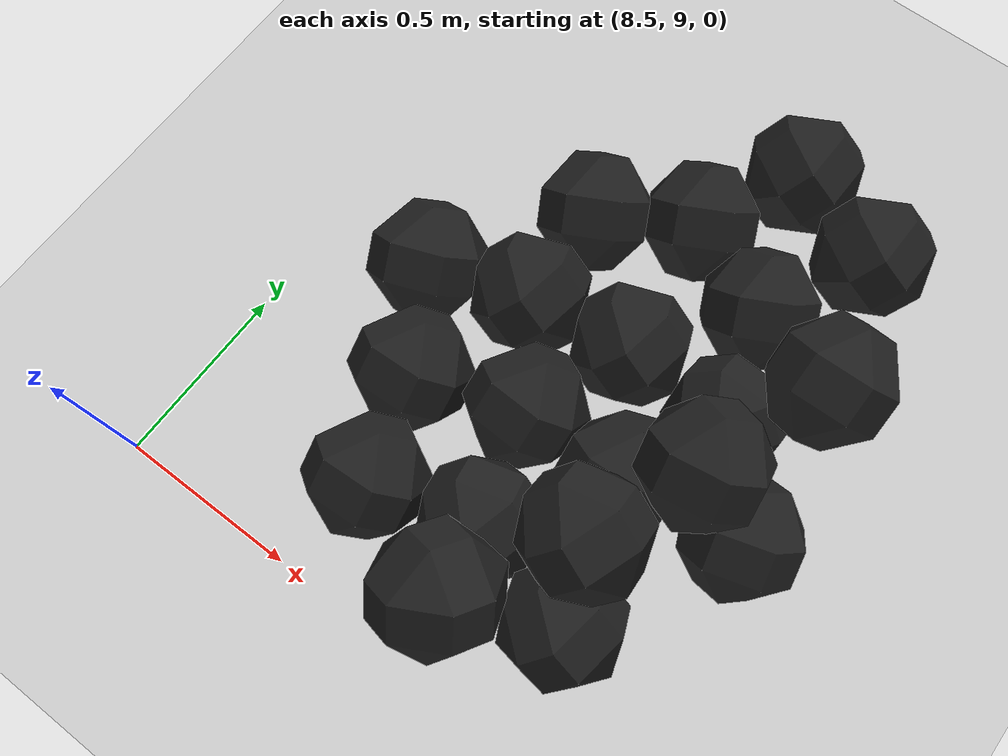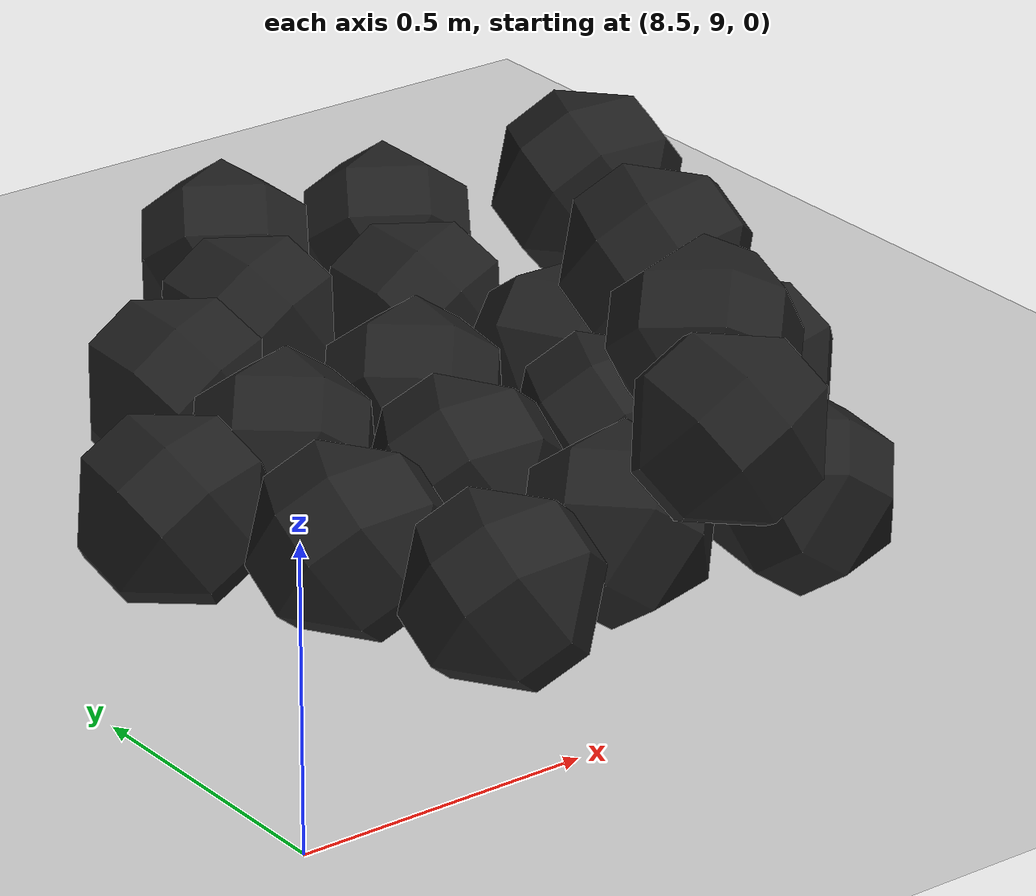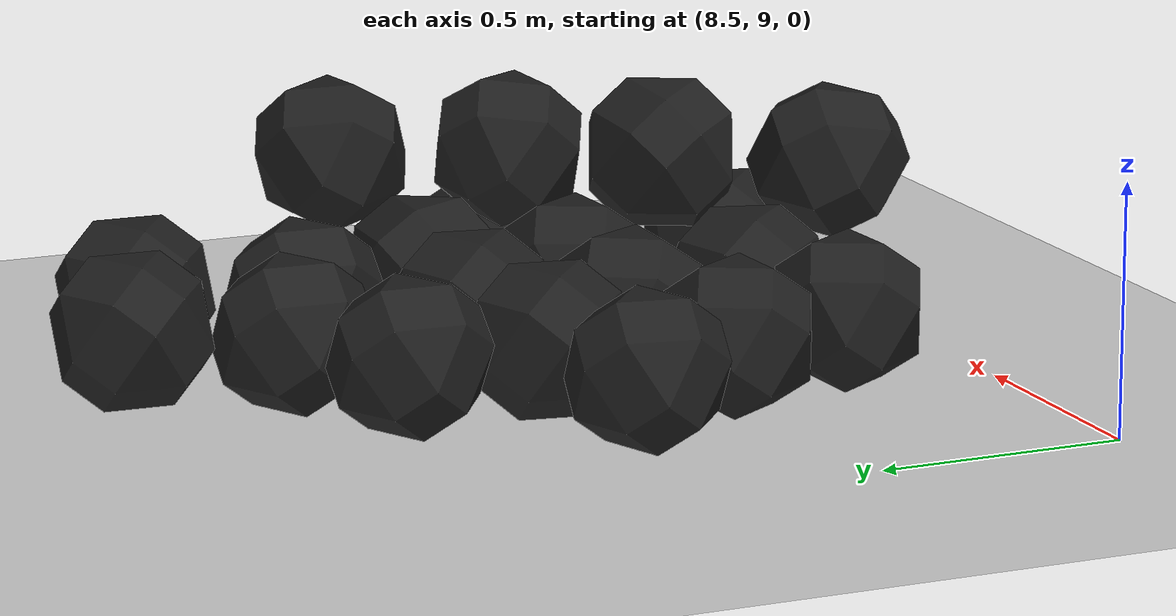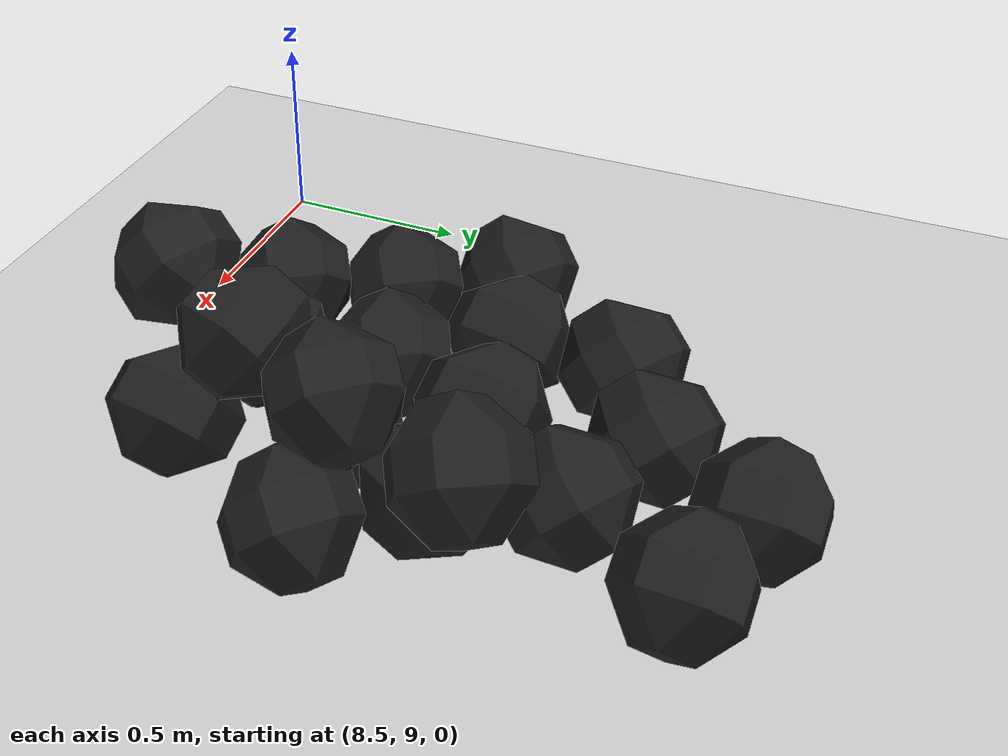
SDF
<sdf version="1.7">
 <world name="default">
  <model name="ground_plane">
   <static>1</static>
   <link name="link">
    <collision name="collision">
     <geometry><plane><normal>0 0 1</normal><size>100 100</size></plane></geometry>
     <surface><friction><ode><mu>100</mu><mu2>50</mu2></ode></friction></surface>
    </collision>
    <visual name="visual">
     <cast_shadows>0</cast_shadows>
     <geometry><plane><normal>0 0 1</normal><size>100 100</size></plane></geometry>
     <material>
      <script><uri>file://media/materials/scripts/gazebo.material</uri><name>Gazebo/Grey</name></script>
     </material>
    </visual>
   </link>
  </model>
  <model name="haoduomiantiaa_11">
   <link name="link_0">
    <inertial>
     <mass>0.2</mass>
     <inertia>
      <ixx>0.166667</ixx>
      <ixy>0</ixy>
      <ixz>0</ixz>
      <iyy>0.166667</iyy>
      <iyz>0</iyz>
      <izz>0.166667</izz>
     </inertia>
    </inertial>
    <visual name="visual">
     <geometry>
      <mesh>
       <uri>/home/lihaoyang/catkin_ws/src/pudong_gazebo/world/stl/haoduomianti.stl</uri>
       <scale>1 1 1</scale>
      </mesh>
     </geometry>
     <material>
      <lighting>1</lighting>
      <script><uri>file://media/materials/scripts/gazebo.material</uri><name>Gazebo/Black</name></script>
      <shader type="pixel"><normal_map>__default__</normal_map></shader>
      <ambient>0.3 0.3 0.3 1</ambient>
      <diffuse>0.7 0.7 0.7 1</diffuse>
      <specular>0.01 0.01 0.01 1</specular>
      <emissive>0 0 0 1</emissive>
     </material>
    </visual>
    <collision name="collision">
     <geometry>
      <mesh>
       <uri>/home/lihaoyang/catkin_ws/src/pudong_gazebo/world/stl/haoduomianti.stl</uri>
       <scale>1 1 1</scale>
      </mesh>
     </geometry>
     <surface>
      <friction>
       <ode><mu>1</mu><mu2>1</mu2><fdir1>0 0 0</fdir1><slip1>0</slip1><slip2>0</slip2></ode>
       <torsional>
        <coefficient>1</coefficient>
        <patch_radius>0</patch_radius>
        <surface_radius>0</surface_radius>
        <use_patch_radius>1</use_patch_radius>
        <ode><slip>0</slip></ode>
       </torsional>
      </friction>
      <bounce><restitution_coefficient>0</restitution_coefficient><threshold>1e+06</threshold></bounce>
      <contact>
       <collide_without_contact>0</collide_without_contact>
       <collide_without_contact_bitmask>1</collide_without_contact_bitmask>
       <collide_bitmask>1</collide_bitmask>
       <ode>
        <soft_cfm>0</soft_cfm>
        <soft_erp>0.2</soft_erp>
        <kp>1e+13</kp>
        <kd>1</kd>
        <max_vel>0.01</max_vel>
        <min_depth>0</min_depth>
       </ode>
       <bullet>
        <split_impulse>1</split_impulse>
        <split_impulse_penetration_threshold>-0.01</split_impulse_penetration_threshold>
        <soft_cfm>0</soft_cfm>
        <soft_erp>0.2</soft_erp>
        <kp>1e+13</kp>
        <kd>1</kd>
       </bullet>
      </contact>
     </surface>
    </collision>
   </link>
   <static>0</static>
   <pose>9.6664 9.28715 -0.115549 0.785326 -0.615512 -1.21019</pose>
  </model>
  <model name="haoduomiantiaa_23">
   <link name="link_0">
    <inertial>
     <mass>0.2</mass>
     <inertia>
      <ixx>0.166667</ixx>
      <ixy>0</ixy>
      <ixz>0</ixz>
      <iyy>0.166667</iyy>
      <iyz>0</iyz>
      <izz>0.166667</izz>
     </inertia>
    </inertial>
    <visual name="visual">
     <geometry>
      <mesh>
       <uri>/home/lihaoyang/catkin_ws/src/pudong_gazebo/world/stl/haoduomianti.stl</uri>
       <scale>1 1 1</scale>
      </mesh>
     </geometry>
     <material>
      <lighting>1</lighting>
      <script><uri>file://media/materials/scripts/gazebo.material</uri><name>Gazebo/Black</name></script>
      <shader type="pixel"><normal_map>__default__</normal_map></shader>
      <ambient>0.3 0.3 0.3 1</ambient>
      <diffuse>0.7 0.7 0.7 1</diffuse>
      <specular>0.01 0.01 0.01 1</specular>
      <emissive>0 0 0 1</emissive>
     </material>
    </visual>
    <collision name="collision">
     <geometry>
      <mesh>
       <uri>/home/lihaoyang/catkin_ws/src/pudong_gazebo/world/stl/haoduomianti.stl</uri>
       <scale>1 1 1</scale>
      </mesh>
     </geometry>
     <surface>
      <friction>
       <ode><mu>1</mu><mu2>1</mu2><fdir1>0 0 0</fdir1><slip1>0</slip1><slip2>0</slip2></ode>
       <torsional>
        <coefficient>1</coefficient>
        <patch_radius>0</patch_radius>
        <surface_radius>0</surface_radius>
        <use_patch_radius>1</use_patch_radius>
        <ode><slip>0</slip></ode>
       </torsional>
      </friction>
      <bounce><restitution_coefficient>0</restitution_coefficient><threshold>1e+06</threshold></bounce>
      <contact>
       <collide_without_contact>0</collide_without_contact>
       <collide_without_contact_bitmask>1</collide_without_contact_bitmask>
       <collide_bitmask>1</collide_bitmask>
       <ode>
        <soft_cfm>0</soft_cfm>
        <soft_erp>0.2</soft_erp>
        <kp>1e+13</kp>
        <kd>1</kd>
        <max_vel>0.01</max_vel>
        <min_depth>0</min_depth>
       </ode>
       <bullet>
        <split_impulse>1</split_impulse>
        <split_impulse_penetration_threshold>-0.01</split_impulse_penetration_threshold>
        <soft_cfm>0</soft_cfm>
        <soft_erp>0.2</soft_erp>
        <kp>1e+13</kp>
        <kd>1</kd>
       </bullet>
      </contact>
     </surface>
    </collision>
   </link>
   <static>0</static>
   <pose>9.75276 10.5268 -0.115443 0.7854 -0.61557 -1.08412</pose>
  </model>
  <model name="haoduomiantiaa_29">
   <link name="link_0">
    <inertial>
     <mass>0.2</mass>
     <inertia>
      <ixx>0.166667</ixx>
      <ixy>0</ixy>
      <ixz>0</ixz>
      <iyy>0.166667</iyy>
      <iyz>0</iyz>
      <izz>0.166667</izz>
     </inertia>
    </inertial>
    <visual name="visual">
     <geometry>
      <mesh>
       <uri>/home/lihaoyang/catkin_ws/src/pudong_gazebo/world/stl/haoduomianti.stl</uri>
       <scale>1 1 1</scale>
      </mesh>
     </geometry>
     <material>
      <lighting>1</lighting>
      <script><uri>file://media/materials/scripts/gazebo.material</uri><name>Gazebo/Black</name></script>
      <shader type="pixel"><normal_map>__default__</normal_map></shader>
      <ambient>0.3 0.3 0.3 1</ambient>
      <diffuse>0.7 0.7 0.7 1</diffuse>
      <specular>0.01 0.01 0.01 1</specular>
      <emissive>0 0 0 1</emissive>
     </material>
    </visual>
    <collision name="collision">
     <geometry>
      <mesh>
       <uri>/home/lihaoyang/catkin_ws/src/pudong_gazebo/world/stl/haoduomianti.stl</uri>
       <scale>1 1 1</scale>
      </mesh>
     </geometry>
     <surface>
      <friction>
       <ode><mu>1</mu><mu2>1</mu2><fdir1>0 0 0</fdir1><slip1>0</slip1><slip2>0</slip2></ode>
       <torsional>
        <coefficient>1</coefficient>
        <patch_radius>0</patch_radius>
        <surface_radius>0</surface_radius>
        <use_patch_radius>1</use_patch_radius>
        <ode><slip>0</slip></ode>
       </torsional>
      </friction>
      <bounce><restitution_coefficient>0</restitution_coefficient><threshold>1e+06</threshold></bounce>
      <contact>
       <collide_without_contact>0</collide_without_contact>
       <collide_without_contact_bitmask>1</collide_without_contact_bitmask>
       <collide_bitmask>1</collide_bitmask>
       <ode>
        <soft_cfm>0</soft_cfm>
        <soft_erp>0.2</soft_erp>
        <kp>1e+13</kp>
        <kd>1</kd>
        <max_vel>0.01</max_vel>
        <min_depth>0</min_depth>
       </ode>
       <bullet>
        <split_impulse>1</split_impulse>
        <split_impulse_penetration_threshold>-0.01</split_impulse_penetration_threshold>
        <soft_cfm>0</soft_cfm>
        <soft_erp>0.2</soft_erp>
        <kp>1e+13</kp>
        <kd>1</kd>
       </bullet>
      </contact>
     </surface>
    </collision>
   </link>
   <static>0</static>
   <pose>9.33699 10.3471 -0.115447 0.785353 -0.615352 2.05198</pose>
  </model>
  <model name="haoduomiantiaa_31">
   <link name="link_0">
    <inertial>
     <mass>0.2</mass>
     <inertia>
      <ixx>0.166667</ixx>
      <ixy>0</ixy>
      <ixz>0</ixz>
      <iyy>0.166667</iyy>
      <iyz>0</iyz>
      <izz>0.166667</izz>
     </inertia>
    </inertial>
    <visual name="visual">
     <geometry>
      <mesh>
       <uri>/home/lihaoyang/catkin_ws/src/pudong_gazebo/world/stl/haoduomianti.stl</uri>
       <scale>1 1 1</scale>
      </mesh>
     </geometry>
     <material>
      <lighting>1</lighting>
      <script><uri>file://media/materials/scripts/gazebo.material</uri><name>Gazebo/Black</name></script>
      <shader type="pixel"><normal_map>__default__</normal_map></shader>
      <ambient>0.3 0.3 0.3 1</ambient>
      <diffuse>0.7 0.7 0.7 1</diffuse>
      <specular>0.01 0.01 0.01 1</specular>
      <emissive>0 0 0 1</emissive>
     </material>
    </visual>
    <collision name="collision">
     <geometry>
      <mesh>
       <uri>/home/lihaoyang/catkin_ws/src/pudong_gazebo/world/stl/haoduomianti.stl</uri>
       <scale>1 1 1</scale>
      </mesh>
     </geometry>
     <surface>
      <friction>
       <ode><mu>1</mu><mu2>1</mu2><fdir1>0 0 0</fdir1><slip1>0</slip1><slip2>0</slip2></ode>
       <torsional>
        <coefficient>1</coefficient>
        <patch_radius>0</patch_radius>
        <surface_radius>0</surface_radius>
        <use_patch_radius>1</use_patch_radius>
        <ode><slip>0</slip></ode>
       </torsional>
      </friction>
      <bounce><restitution_coefficient>0</restitution_coefficient><threshold>1e+06</threshold></bounce>
      <contact>
       <collide_without_contact>0</collide_without_contact>
       <collide_without_contact_bitmask>1</collide_without_contact_bitmask>
       <collide_bitmask>1</collide_bitmask>
       <ode>
        <soft_cfm>0</soft_cfm>
        <soft_erp>0.2</soft_erp>
        <kp>1e+13</kp>
        <kd>1</kd>
        <max_vel>0.01</max_vel>
        <min_depth>0</min_depth>
       </ode>
       <bullet>
        <split_impulse>1</split_impulse>
        <split_impulse_penetration_threshold>-0.01</split_impulse_penetration_threshold>
        <soft_cfm>0</soft_cfm>
        <soft_erp>0.2</soft_erp>
        <kp>1e+13</kp>
        <kd>1</kd>
       </bullet>
      </contact>
     </surface>
    </collision>
   </link>
   <static>0</static>
   <pose>9.69293 9.93489 -0.115496 0.785403 -0.615469 -1.60337</pose>
  </model>
  <model name="haoduomiantiaa_35">
   <link name="link_0">
    <inertial>
     <mass>0.2</mass>
     <inertia>
      <ixx>0.166667</ixx>
      <ixy>0</ixy>
      <ixz>0</ixz>
      <iyy>0.166667</iyy>
      <iyz>0</iyz>
      <izz>0.166667</izz>
     </inertia>
    </inertial>
    <visual name="visual">
     <geometry>
      <mesh>
       <uri>/home/lihaoyang/catkin_ws/src/pudong_gazebo/world/stl/haoduomianti.stl</uri>
       <scale>1 1 1</scale>
      </mesh>
     </geometry>
     <material>
      <lighting>1</lighting>
      <script><uri>file://media/materials/scripts/gazebo.material</uri><name>Gazebo/Black</name></script>
      <shader type="pixel"><normal_map>__default__</normal_map></shader>
      <ambient>0.3 0.3 0.3 1</ambient>
      <diffuse>0.7 0.7 0.7 1</diffuse>
      <specular>0.01 0.01 0.01 1</specular>
      <emissive>0 0 0 1</emissive>
     </material>
    </visual>
    <collision name="collision">
     <geometry>
      <mesh>
       <uri>/home/lihaoyang/catkin_ws/src/pudong_gazebo/world/stl/haoduomianti.stl</uri>
       <scale>1 1 1</scale>
      </mesh>
     </geometry>
     <surface>
      <friction>
       <ode><mu>1</mu><mu2>1</mu2><fdir1>0 0 0</fdir1><slip1>0</slip1><slip2>0</slip2></ode>
       <torsional>
        <coefficient>1</coefficient>
        <patch_radius>0</patch_radius>
        <surface_radius>0</surface_radius>
        <use_patch_radius>1</use_patch_radius>
        <ode><slip>0</slip></ode>
       </torsional>
      </friction>
      <bounce><restitution_coefficient>0</restitution_coefficient><threshold>1e+06</threshold></bounce>
      <contact>
       <collide_without_contact>0</collide_without_contact>
       <collide_without_contact_bitmask>1</collide_without_contact_bitmask>
       <collide_bitmask>1</collide_bitmask>
       <ode>
        <soft_cfm>0</soft_cfm>
        <soft_erp>0.2</soft_erp>
        <kp>1e+13</kp>
        <kd>1</kd>
        <max_vel>0.01</max_vel>
        <min_depth>0</min_depth>
       </ode>
       <bullet>
        <split_impulse>1</split_impulse>
        <split_impulse_penetration_threshold>-0.01</split_impulse_penetration_threshold>
        <soft_cfm>0</soft_cfm>
        <soft_erp>0.2</soft_erp>
        <kp>1e+13</kp>
        <kd>1</kd>
       </bullet>
      </contact>
     </surface>
    </collision>
   </link>
   <static>0</static>
   <pose>9.41187 9.2096 0.108346 0.985335 -0.586121 -0.153858</pose>
  </model>
  <model name="haoduomiantiaa_38">
   <link name="link_0">
    <inertial>
     <mass>0.2</mass>
     <inertia>
      <ixx>0.166667</ixx>
      <ixy>0</ixy>
      <ixz>0</ixz>
      <iyy>0.166667</iyy>
      <iyz>0</iyz>
      <izz>0.166667</izz>
     </inertia>
    </inertial>
    <visual name="visual">
     <geometry>
      <mesh>
       <uri>/home/lihaoyang/catkin_ws/src/pudong_gazebo/world/stl/haoduomianti.stl</uri>
       <scale>1 1 1</scale>
      </mesh>
     </geometry>
     <material>
      <lighting>1</lighting>
      <script><uri>file://media/materials/scripts/gazebo.material</uri><name>Gazebo/Black</name></script>
      <shader type="pixel"><normal_map>__default__</normal_map></shader>
      <ambient>0.3 0.3 0.3 1</ambient>
      <diffuse>0.7 0.7 0.7 1</diffuse>
      <specular>0.01 0.01 0.01 1</specular>
      <emissive>0 0 0 1</emissive>
     </material>
    </visual>
    <collision name="collision">
     <geometry>
      <mesh>
       <uri>/home/lihaoyang/catkin_ws/src/pudong_gazebo/world/stl/haoduomianti.stl</uri>
       <scale>1 1 1</scale>
      </mesh>
     </geometry>
     <surface>
      <friction>
       <ode><mu>1</mu><mu2>1</mu2><fdir1>0 0 0</fdir1><slip1>0</slip1><slip2>0</slip2></ode>
       <torsional>
        <coefficient>1</coefficient>
        <patch_radius>0</patch_radius>
        <surface_radius>0</surface_radius>
        <use_patch_radius>1</use_patch_radius>
        <ode><slip>0</slip></ode>
       </torsional>
      </friction>
      <bounce><restitution_coefficient>0</restitution_coefficient><threshold>1e+06</threshold></bounce>
      <contact>
       <collide_without_contact>0</collide_without_contact>
       <collide_without_contact_bitmask>1</collide_without_contact_bitmask>
       <collide_bitmask>1</collide_bitmask>
       <ode>
        <soft_cfm>0</soft_cfm>
        <soft_erp>0.2</soft_erp>
        <kp>1e+13</kp>
        <kd>1</kd>
        <max_vel>0.01</max_vel>
        <min_depth>0</min_depth>
       </ode>
       <bullet>
        <split_impulse>1</split_impulse>
        <split_impulse_penetration_threshold>-0.01</split_impulse_penetration_threshold>
        <soft_cfm>0</soft_cfm>
        <soft_erp>0.2</soft_erp>
        <kp>1e+13</kp>
        <kd>1</kd>
       </bullet>
      </contact>
     </surface>
    </collision>
   </link>
   <static>0</static>
   <pose>9.59708 10.2291 -0.115457 0.785738 -0.61564 -2.13689</pose>
  </model>
  <model name="haoduomiantiaa_41">
   <link name="link_0">
    <inertial>
     <mass>0.2</mass>
     <inertia>
      <ixx>0.166667</ixx>
      <ixy>0</ixy>
      <ixz>0</ixz>
      <iyy>0.166667</iyy>
      <iyz>0</iyz>
      <izz>0.166667</izz>
     </inertia>
    </inertial>
    <visual name="visual">
     <geometry>
      <mesh>
       <uri>/home/lihaoyang/catkin_ws/src/pudong_gazebo/world/stl/haoduomianti.stl</uri>
       <scale>1 1 1</scale>
      </mesh>
     </geometry>
     <material>
      <lighting>1</lighting>
      <script><uri>file://media/materials/scripts/gazebo.material</uri><name>Gazebo/Black</name></script>
      <shader type="pixel"><normal_map>__default__</normal_map></shader>
      <ambient>0.3 0.3 0.3 1</ambient>
      <diffuse>0.7 0.7 0.7 1</diffuse>
      <specular>0.01 0.01 0.01 1</specular>
      <emissive>0 0 0 1</emissive>
     </material>
    </visual>
    <collision name="collision">
     <geometry>
      <mesh>
       <uri>/home/lihaoyang/catkin_ws/src/pudong_gazebo/world/stl/haoduomianti.stl</uri>
       <scale>1 1 1</scale>
      </mesh>
     </geometry>
     <surface>
      <friction>
       <ode><mu>1</mu><mu2>1</mu2><fdir1>0 0 0</fdir1><slip1>0</slip1><slip2>0</slip2></ode>
       <torsional>
        <coefficient>1</coefficient>
        <patch_radius>0</patch_radius>
        <surface_radius>0</surface_radius>
        <use_patch_radius>1</use_patch_radius>
        <ode><slip>0</slip></ode>
       </torsional>
      </friction>
      <bounce><restitution_coefficient>0</restitution_coefficient><threshold>1e+06</threshold></bounce>
      <contact>
       <collide_without_contact>0</collide_without_contact>
       <collide_without_contact_bitmask>1</collide_without_contact_bitmask>
       <collide_bitmask>1</collide_bitmask>
       <ode>
        <soft_cfm>0</soft_cfm>
        <soft_erp>0.2</soft_erp>
        <kp>1e+13</kp>
        <kd>1</kd>
        <max_vel>0.01</max_vel>
        <min_depth>0</min_depth>
       </ode>
       <bullet>
        <split_impulse>1</split_impulse>
        <split_impulse_penetration_threshold>-0.01</split_impulse_penetration_threshold>
        <soft_cfm>0</soft_cfm>
        <soft_erp>0.2</soft_erp>
        <kp>1e+13</kp>
        <kd>1</kd>
       </bullet>
      </contact>
     </surface>
    </collision>
   </link>
   <static>0</static>
   <pose>9.27758 9.66322 -0.115464 0.785649 -0.615542 -2.65196</pose>
  </model>
  <model name="haoduomiantiaa_53">
   <link name="link_0">
    <inertial>
     <mass>0.2</mass>
     <inertia>
      <ixx>0.166667</ixx>
      <ixy>0</ixy>
      <ixz>0</ixz>
      <iyy>0.166667</iyy>
      <iyz>0</iyz>
      <izz>0.166667</izz>
     </inertia>
    </inertial>
    <visual name="visual">
     <geometry>
      <mesh>
       <uri>/home/lihaoyang/catkin_ws/src/pudong_gazebo/world/stl/haoduomianti.stl</uri>
       <scale>1 1 1</scale>
      </mesh>
     </geometry>
     <material>
      <lighting>1</lighting>
      <script><uri>file://media/materials/scripts/gazebo.material</uri><name>Gazebo/Black</name></script>
      <shader type="pixel"><normal_map>__default__</normal_map></shader>
      <ambient>0.3 0.3 0.3 1</ambient>
      <diffuse>0.7 0.7 0.7 1</diffuse>
      <specular>0.01 0.01 0.01 1</specular>
      <emissive>0 0 0 1</emissive>
     </material>
    </visual>
    <collision name="collision">
     <geometry>
      <mesh>
       <uri>/home/lihaoyang/catkin_ws/src/pudong_gazebo/world/stl/haoduomianti.stl</uri>
       <scale>1 1 1</scale>
      </mesh>
     </geometry>
     <surface>
      <friction>
       <ode><mu>1</mu><mu2>1</mu2><fdir1>0 0 0</fdir1><slip1>0</slip1><slip2>0</slip2></ode>
       <torsional>
        <coefficient>1</coefficient>
        <patch_radius>0</patch_radius>
        <surface_radius>0</surface_radius>
        <use_patch_radius>1</use_patch_radius>
        <ode><slip>0</slip></ode>
       </torsional>
      </friction>
      <bounce><restitution_coefficient>0</restitution_coefficient><threshold>1e+06</threshold></bounce>
      <contact>
       <collide_without_contact>0</collide_without_contact>
       <collide_without_contact_bitmask>1</collide_without_contact_bitmask>
       <collide_bitmask>1</collide_bitmask>
       <ode>
        <soft_cfm>0</soft_cfm>
        <soft_erp>0.2</soft_erp>
        <kp>1e+13</kp>
        <kd>1</kd>
        <max_vel>0.01</max_vel>
        <min_depth>0</min_depth>
       </ode>
       <bullet>
        <split_impulse>1</split_impulse>
        <split_impulse_penetration_threshold>-0.01</split_impulse_penetration_threshold>
        <soft_cfm>0</soft_cfm>
        <soft_erp>0.2</soft_erp>
        <kp>1e+13</kp>
        <kd>1</kd>
       </bullet>
      </contact>
     </surface>
    </collision>
   </link>
   <static>0</static>
   <pose>9.36141 9.36718 -0.115496 0.785406 -0.615479 0.790856</pose>
  </model>
  <model name="haoduomiantiaa_57">
   <link name="link_0">
    <inertial>
     <mass>0.2</mass>
     <inertia>
      <ixx>0.166667</ixx>
      <ixy>0</ixy>
      <ixz>0</ixz>
      <iyy>0.166667</iyy>
      <iyz>0</iyz>
      <izz>0.166667</izz>
     </inertia>
    </inertial>
    <visual name="visual">
     <geometry>
      <mesh>
       <uri>/home/lihaoyang/catkin_ws/src/pudong_gazebo/world/stl/haoduomianti.stl</uri>
       <scale>1 1 1</scale>
      </mesh>
     </geometry>
     <material>
      <lighting>1</lighting>
      <script><uri>file://media/materials/scripts/gazebo.material</uri><name>Gazebo/Black</name></script>
      <shader type="pixel"><normal_map>__default__</normal_map></shader>
      <ambient>0.3 0.3 0.3 1</ambient>
      <diffuse>0.7 0.7 0.7 1</diffuse>
      <specular>0.01 0.01 0.01 1</specular>
      <emissive>0 0 0 1</emissive>
     </material>
    </visual>
    <collision name="collision">
     <geometry>
      <mesh>
       <uri>/home/lihaoyang/catkin_ws/src/pudong_gazebo/world/stl/haoduomianti.stl</uri>
       <scale>1 1 1</scale>
      </mesh>
     </geometry>
     <surface>
      <friction>
       <ode><mu>1</mu><mu2>1</mu2><fdir1>0 0 0</fdir1><slip1>0</slip1><slip2>0</slip2></ode>
       <torsional>
        <coefficient>1</coefficient>
        <patch_radius>0</patch_radius>
        <surface_radius>0</surface_radius>
        <use_patch_radius>1</use_patch_radius>
        <ode><slip>0</slip></ode>
       </torsional>
      </friction>
      <bounce><restitution_coefficient>0</restitution_coefficient><threshold>1e+06</threshold></bounce>
      <contact>
       <collide_without_contact>0</collide_without_contact>
       <collide_without_contact_bitmask>1</collide_without_contact_bitmask>
       <collide_bitmask>1</collide_bitmask>
       <ode>
        <soft_cfm>0</soft_cfm>
        <soft_erp>0.2</soft_erp>
        <kp>1e+13</kp>
        <kd>1</kd>
        <max_vel>0.01</max_vel>
        <min_depth>0</min_depth>
       </ode>
       <bullet>
        <split_impulse>1</split_impulse>
        <split_impulse_penetration_threshold>-0.01</split_impulse_penetration_threshold>
        <soft_cfm>0</soft_cfm>
        <soft_erp>0.2</soft_erp>
        <kp>1e+13</kp>
        <kd>1</kd>
       </bullet>
      </contact>
     </surface>
    </collision>
   </link>
   <static>0</static>
   <pose>8.8322 9.82719 -0.115469 0.785394 -0.61546 1.92793</pose>
  </model>
  <model name="haoduomiantiaa_58">
   <link name="link_0">
    <inertial>
     <mass>0.2</mass>
     <inertia>
      <ixx>0.166667</ixx>
      <ixy>0</ixy>
      <ixz>0</ixz>
      <iyy>0.166667</iyy>
      <iyz>0</iyz>
      <izz>0.166667</izz>
     </inertia>
    </inertial>
    <visual name="visual">
     <geometry>
      <mesh>
       <uri>/home/lihaoyang/catkin_ws/src/pudong_gazebo/world/stl/haoduomianti.stl</uri>
       <scale>1 1 1</scale>
      </mesh>
     </geometry>
     <material>
      <lighting>1</lighting>
      <script><uri>file://media/materials/scripts/gazebo.material</uri><name>Gazebo/Black</name></script>
      <shader type="pixel"><normal_map>__default__</normal_map></shader>
      <ambient>0.3 0.3 0.3 1</ambient>
      <diffuse>0.7 0.7 0.7 1</diffuse>
      <specular>0.01 0.01 0.01 1</specular>
      <emissive>0 0 0 1</emissive>
     </material>
    </visual>
    <collision name="collision">
     <geometry>
      <mesh>
       <uri>/home/lihaoyang/catkin_ws/src/pudong_gazebo/world/stl/haoduomianti.stl</uri>
       <scale>1 1 1</scale>
      </mesh>
     </geometry>
     <surface>
      <friction>
       <ode><mu>1</mu><mu2>1</mu2><fdir1>0 0 0</fdir1><slip1>0</slip1><slip2>0</slip2></ode>
       <torsional>
        <coefficient>1</coefficient>
        <patch_radius>0</patch_radius>
        <surface_radius>0</surface_radius>
        <use_patch_radius>1</use_patch_radius>
        <ode><slip>0</slip></ode>
       </torsional>
      </friction>
      <bounce><restitution_coefficient>0</restitution_coefficient><threshold>1e+06</threshold></bounce>
      <contact>
       <collide_without_contact>0</collide_without_contact>
       <collide_without_contact_bitmask>1</collide_without_contact_bitmask>
       <collide_bitmask>1</collide_bitmask>
       <ode>
        <soft_cfm>0</soft_cfm>
        <soft_erp>0.2</soft_erp>
        <kp>1e+13</kp>
        <kd>1</kd>
        <max_vel>0.01</max_vel>
        <min_depth>0</min_depth>
       </ode>
       <bullet>
        <split_impulse>1</split_impulse>
        <split_impulse_penetration_threshold>-0.01</split_impulse_penetration_threshold>
        <soft_cfm>0</soft_cfm>
        <soft_erp>0.2</soft_erp>
        <kp>1e+13</kp>
        <kd>1</kd>
       </bullet>
      </contact>
     </surface>
    </collision>
   </link>
   <static>0</static>
   <pose>9.3901 9.95051 -0.115478 0.785337 -0.615526 0.876616</pose>
  </model>
  <model name="haoduomiantiaa_68">
   <link name="link_0">
    <inertial>
     <mass>0.2</mass>
     <inertia>
      <ixx>0.166667</ixx>
      <ixy>0</ixy>
      <ixz>0</ixz>
      <iyy>0.166667</iyy>
      <iyz>0</iyz>
      <izz>0.166667</izz>
     </inertia>
    </inertial>
    <visual name="visual">
     <geometry>
      <mesh>
       <uri>/home/lihaoyang/catkin_ws/src/pudong_gazebo/world/stl/haoduomianti.stl</uri>
       <scale>1 1 1</scale>
      </mesh>
     </geometry>
     <material>
      <lighting>1</lighting>
      <script><uri>file://media/materials/scripts/gazebo.material</uri><name>Gazebo/Black</name></script>
      <shader type="pixel"><normal_map>__default__</normal_map></shader>
      <ambient>0.3 0.3 0.3 1</ambient>
      <diffuse>0.7 0.7 0.7 1</diffuse>
      <specular>0.01 0.01 0.01 1</specular>
      <emissive>0 0 0 1</emissive>
     </material>
    </visual>
    <collision name="collision">
     <geometry>
      <mesh>
       <uri>/home/lihaoyang/catkin_ws/src/pudong_gazebo/world/stl/haoduomianti.stl</uri>
       <scale>1 1 1</scale>
      </mesh>
     </geometry>
     <surface>
      <friction>
       <ode><mu>1</mu><mu2>1</mu2><fdir1>0 0 0</fdir1><slip1>0</slip1><slip2>0</slip2></ode>
       <torsional>
        <coefficient>1</coefficient>
        <patch_radius>0</patch_radius>
        <surface_radius>0</surface_radius>
        <use_patch_radius>1</use_patch_radius>
        <ode><slip>0</slip></ode>
       </torsional>
      </friction>
      <bounce><restitution_coefficient>0</restitution_coefficient><threshold>1e+06</threshold></bounce>
      <contact>
       <collide_without_contact>0</collide_without_contact>
       <collide_without_contact_bitmask>1</collide_without_contact_bitmask>
       <collide_bitmask>1</collide_bitmask>
       <ode>
        <soft_cfm>0</soft_cfm>
        <soft_erp>0.2</soft_erp>
        <kp>1e+13</kp>
        <kd>1</kd>
        <max_vel>0.01</max_vel>
        <min_depth>0</min_depth>
       </ode>
       <bullet>
        <split_impulse>1</split_impulse>
        <split_impulse_penetration_threshold>-0.01</split_impulse_penetration_threshold>
        <soft_cfm>0</soft_cfm>
        <soft_erp>0.2</soft_erp>
        <kp>1e+13</kp>
        <kd>1</kd>
       </bullet>
      </contact>
     </surface>
    </collision>
   </link>
   <static>0</static>
   <pose>9.56714 9.66002 -0.115469 0.785402 -0.615478 -0.468831</pose>
  </model>
  <model name="haoduomiantiaa_85">
   <link name="link_0">
    <inertial>
     <mass>0.2</mass>
     <inertia>
      <ixx>0.166667</ixx>
      <ixy>0</ixy>
      <ixz>0</ixz>
      <iyy>0.166667</iyy>
      <iyz>0</iyz>
      <izz>0.166667</izz>
     </inertia>
    </inertial>
    <visual name="visual">
     <geometry>
      <mesh>
       <uri>/home/lihaoyang/catkin_ws/src/pudong_gazebo/world/stl/haoduomianti.stl</uri>
       <scale>1 1 1</scale>
      </mesh>
     </geometry>
     <material>
      <lighting>1</lighting>
      <script><uri>file://media/materials/scripts/gazebo.material</uri><name>Gazebo/Black</name></script>
      <shader type="pixel"><normal_map>__default__</normal_map></shader>
      <ambient>0.3 0.3 0.3 1</ambient>
      <diffuse>0.7 0.7 0.7 1</diffuse>
      <specular>0.01 0.01 0.01 1</specular>
      <emissive>0 0 0 1</emissive>
     </material>
    </visual>
    <collision name="collision">
     <geometry>
      <mesh>
       <uri>/home/lihaoyang/catkin_ws/src/pudong_gazebo/world/stl/haoduomianti.stl</uri>
       <scale>1 1 1</scale>
      </mesh>
     </geometry>
     <surface>
      <friction>
       <ode><mu>1</mu><mu2>1</mu2><fdir1>0 0 0</fdir1><slip1>0</slip1><slip2>0</slip2></ode>
       <torsional>
        <coefficient>1</coefficient>
        <patch_radius>0</patch_radius>
        <surface_radius>0</surface_radius>
        <use_patch_radius>1</use_patch_radius>
        <ode><slip>0</slip></ode>
       </torsional>
      </friction>
      <bounce><restitution_coefficient>0</restitution_coefficient><threshold>1e+06</threshold></bounce>
      <contact>
       <collide_without_contact>0</collide_without_contact>
       <collide_without_contact_bitmask>1</collide_without_contact_bitmask>
       <collide_bitmask>1</collide_bitmask>
       <ode>
        <soft_cfm>0</soft_cfm>
        <soft_erp>0.2</soft_erp>
        <kp>1e+13</kp>
        <kd>1</kd>
        <max_vel>0.01</max_vel>
        <min_depth>0</min_depth>
       </ode>
       <bullet>
        <split_impulse>1</split_impulse>
        <split_impulse_penetration_threshold>-0.01</split_impulse_penetration_threshold>
        <soft_cfm>0</soft_cfm>
        <soft_erp>0.2</soft_erp>
        <kp>1e+13</kp>
        <kd>1</kd>
       </bullet>
      </contact>
     </surface>
    </collision>
   </link>
   <static>0</static>
   <pose>9.7348 9.76184 0.115689 0.712427 -0.701971 1.75373</pose>
  </model>
  <model name="haoduomiantiaa_93">
   <link name="link_0">
    <inertial>
     <mass>0.2</mass>
     <inertia>
      <ixx>0.166667</ixx>
      <ixy>0</ixy>
      <ixz>0</ixz>
      <iyy>0.166667</iyy>
      <iyz>0</iyz>
      <izz>0.166667</izz>
     </inertia>
    </inertial>
    <visual name="visual">
     <geometry>
      <mesh>
       <uri>/home/lihaoyang/catkin_ws/src/pudong_gazebo/world/stl/haoduomianti.stl</uri>
       <scale>1 1 1</scale>
      </mesh>
     </geometry>
     <material>
      <lighting>1</lighting>
      <script><uri>file://media/materials/scripts/gazebo.material</uri><name>Gazebo/Black</name></script>
      <shader type="pixel"><normal_map>__default__</normal_map></shader>
      <ambient>0.3 0.3 0.3 1</ambient>
      <diffuse>0.7 0.7 0.7 1</diffuse>
      <specular>0.01 0.01 0.01 1</specular>
      <emissive>0 0 0 1</emissive>
     </material>
    </visual>
    <collision name="collision">
     <geometry>
      <mesh>
       <uri>/home/lihaoyang/catkin_ws/src/pudong_gazebo/world/stl/haoduomianti.stl</uri>
       <scale>1 1 1</scale>
      </mesh>
     </geometry>
     <surface>
      <friction>
       <ode><mu>1</mu><mu2>1</mu2><fdir1>0 0 0</fdir1><slip1>0</slip1><slip2>0</slip2></ode>
       <torsional>
        <coefficient>1</coefficient>
        <patch_radius>0</patch_radius>
        <surface_radius>0</surface_radius>
        <use_patch_radius>1</use_patch_radius>
        <ode><slip>0</slip></ode>
       </torsional>
      </friction>
      <bounce><restitution_coefficient>0</restitution_coefficient><threshold>1e+06</threshold></bounce>
      <contact>
       <collide_without_contact>0</collide_without_contact>
       <collide_without_contact_bitmask>1</collide_without_contact_bitmask>
       <collide_bitmask>1</collide_bitmask>
       <ode>
        <soft_cfm>0</soft_cfm>
        <soft_erp>0.2</soft_erp>
        <kp>1e+13</kp>
        <kd>1</kd>
        <max_vel>0.01</max_vel>
        <min_depth>0</min_depth>
       </ode>
       <bullet>
        <split_impulse>1</split_impulse>
        <split_impulse_penetration_threshold>-0.01</split_impulse_penetration_threshold>
        <soft_cfm>0</soft_cfm>
        <soft_erp>0.2</soft_erp>
        <kp>1e+13</kp>
        <kd>1</kd>
       </bullet>
      </contact>
     </surface>
    </collision>
   </link>
   <static>0</static>
   <pose>9.63909 9.44692 0.109809 0.973602 -0.661296 -1.51614</pose>
  </model>
  <model name="haoduomiantiaa_102">
   <link name="link_0">
    <inertial>
     <mass>0.2</mass>
     <inertia>
      <ixx>0.166667</ixx>
      <ixy>0</ixy>
      <ixz>0</ixz>
      <iyy>0.166667</iyy>
      <iyz>0</iyz>
      <izz>0.166667</izz>
     </inertia>
    </inertial>
    <visual name="visual">
     <geometry>
      <mesh>
       <uri>/home/lihaoyang/catkin_ws/src/pudong_gazebo/world/stl/haoduomianti.stl</uri>
       <scale>1 1 1</scale>
      </mesh>
     </geometry>
     <material>
      <lighting>1</lighting>
      <script><uri>file://media/materials/scripts/gazebo.material</uri><name>Gazebo/Black</name></script>
      <shader type="pixel"><normal_map>__default__</normal_map></shader>
      <ambient>0.3 0.3 0.3 1</ambient>
      <diffuse>0.7 0.7 0.7 1</diffuse>
      <specular>0.01 0.01 0.01 1</specular>
      <emissive>0 0 0 1</emissive>
     </material>
    </visual>
    <collision name="collision">
     <geometry>
      <mesh>
       <uri>/home/lihaoyang/catkin_ws/src/pudong_gazebo/world/stl/haoduomianti.stl</uri>
       <scale>1 1 1</scale>
      </mesh>
     </geometry>
     <surface>
      <friction>
       <ode><mu>1</mu><mu2>1</mu2><fdir1>0 0 0</fdir1><slip1>0</slip1><slip2>0</slip2></ode>
       <torsional>
        <coefficient>1</coefficient>
        <patch_radius>0</patch_radius>
        <surface_radius>0</surface_radius>
        <use_patch_radius>1</use_patch_radius>
        <ode><slip>0</slip></ode>
       </torsional>
      </friction>
      <bounce><restitution_coefficient>0</restitution_coefficient><threshold>1e+06</threshold></bounce>
      <contact>
       <collide_without_contact>0</collide_without_contact>
       <collide_without_contact_bitmask>1</collide_without_contact_bitmask>
       <collide_bitmask>1</collide_bitmask>
       <ode>
        <soft_cfm>0</soft_cfm>
        <soft_erp>0.2</soft_erp>
        <kp>1e+13</kp>
        <kd>1</kd>
        <max_vel>0.01</max_vel>
        <min_depth>0</min_depth>
       </ode>
       <bullet>
        <split_impulse>1</split_impulse>
        <split_impulse_penetration_threshold>-0.01</split_impulse_penetration_threshold>
        <soft_cfm>0</soft_cfm>
        <soft_erp>0.2</soft_erp>
        <kp>1e+13</kp>
        <kd>1</kd>
       </bullet>
      </contact>
     </surface>
    </collision>
   </link>
   <static>0</static>
   <pose>8.98716 9.56908 -0.115511 0.785367 -0.615512 -0.477415</pose>
  </model>
  <model name="haoduomiantiaa_103">
   <link name="link_0">
    <inertial>
     <mass>0.2</mass>
     <inertia>
      <ixx>0.166667</ixx>
      <ixy>0</ixy>
      <ixz>0</ixz>
      <iyy>0.166667</iyy>
      <iyz>0</iyz>
      <izz>0.166667</izz>
     </inertia>
    </inertial>
    <visual name="visual">
     <geometry>
      <mesh>
       <uri>/home/lihaoyang/catkin_ws/src/pudong_gazebo/world/stl/haoduomianti.stl</uri>
       <scale>1 1 1</scale>
      </mesh>
     </geometry>
     <material>
      <lighting>1</lighting>
      <script><uri>file://media/materials/scripts/gazebo.material</uri><name>Gazebo/Black</name></script>
      <shader type="pixel"><normal_map>__default__</normal_map></shader>
      <ambient>0.3 0.3 0.3 1</ambient>
      <diffuse>0.7 0.7 0.7 1</diffuse>
      <specular>0.01 0.01 0.01 1</specular>
      <emissive>0 0 0 1</emissive>
     </material>
    </visual>
    <collision name="collision">
     <geometry>
      <mesh>
       <uri>/home/lihaoyang/catkin_ws/src/pudong_gazebo/world/stl/haoduomianti.stl</uri>
       <scale>1 1 1</scale>
      </mesh>
     </geometry>
     <surface>
      <friction>
       <ode><mu>1</mu><mu2>1</mu2><fdir1>0 0 0</fdir1><slip1>0</slip1><slip2>0</slip2></ode>
       <torsional>
        <coefficient>1</coefficient>
        <patch_radius>0</patch_radius>
        <surface_radius>0</surface_radius>
        <use_patch_radius>1</use_patch_radius>
        <ode><slip>0</slip></ode>
       </torsional>
      </friction>
      <bounce><restitution_coefficient>0</restitution_coefficient><threshold>1e+06</threshold></bounce>
      <contact>
       <collide_without_contact>0</collide_without_contact>
       <collide_without_contact_bitmask>1</collide_without_contact_bitmask>
       <collide_bitmask>1</collide_bitmask>
       <ode>
        <soft_cfm>0</soft_cfm>
        <soft_erp>0.2</soft_erp>
        <kp>1e+13</kp>
        <kd>1</kd>
        <max_vel>0.01</max_vel>
        <min_depth>0</min_depth>
       </ode>
       <bullet>
        <split_impulse>1</split_impulse>
        <split_impulse_penetration_threshold>-0.01</split_impulse_penetration_threshold>
        <soft_cfm>0</soft_cfm>
        <soft_erp>0.2</soft_erp>
        <kp>1e+13</kp>
        <kd>1</kd>
       </bullet>
      </contact>
     </surface>
    </collision>
   </link>
   <static>0</static>
   <pose>9.8332 10.0509 0.110473 0.835843 -0.521217 1.58763</pose>
  </model>
  <model name="haoduomiantiaa_119">
   <link name="link_0">
    <inertial>
     <mass>0.2</mass>
     <inertia>
      <ixx>0.166667</ixx>
      <ixy>0</ixy>
      <ixz>0</ixz>
      <iyy>0.166667</iyy>
      <iyz>0</iyz>
      <izz>0.166667</izz>
     </inertia>
    </inertial>
    <visual name="visual">
     <geometry>
      <mesh>
       <uri>/home/lihaoyang/catkin_ws/src/pudong_gazebo/world/stl/haoduomianti.stl</uri>
       <scale>1 1 1</scale>
      </mesh>
     </geometry>
     <material>
      <lighting>1</lighting>
      <script><uri>file://media/materials/scripts/gazebo.material</uri><name>Gazebo/Black</name></script>
      <shader type="pixel"><normal_map>__default__</normal_map></shader>
      <ambient>0.3 0.3 0.3 1</ambient>
      <diffuse>0.7 0.7 0.7 1</diffuse>
      <specular>0.01 0.01 0.01 1</specular>
      <emissive>0 0 0 1</emissive>
     </material>
    </visual>
    <collision name="collision">
     <geometry>
      <mesh>
       <uri>/home/lihaoyang/catkin_ws/src/pudong_gazebo/world/stl/haoduomianti.stl</uri>
       <scale>1 1 1</scale>
      </mesh>
     </geometry>
     <surface>
      <friction>
       <ode><mu>1</mu><mu2>1</mu2><fdir1>0 0 0</fdir1><slip1>0</slip1><slip2>0</slip2></ode>
       <torsional>
        <coefficient>1</coefficient>
        <patch_radius>0</patch_radius>
        <surface_radius>0</surface_radius>
        <use_patch_radius>1</use_patch_radius>
        <ode><slip>0</slip></ode>
       </torsional>
      </friction>
      <bounce><restitution_coefficient>0</restitution_coefficient><threshold>1e+06</threshold></bounce>
      <contact>
       <collide_without_contact>0</collide_without_contact>
       <collide_without_contact_bitmask>1</collide_without_contact_bitmask>
       <collide_bitmask>1</collide_bitmask>
       <ode>
        <soft_cfm>0</soft_cfm>
        <soft_erp>0.2</soft_erp>
        <kp>1e+13</kp>
        <kd>1</kd>
        <max_vel>0.01</max_vel>
        <min_depth>0</min_depth>
       </ode>
       <bullet>
        <split_impulse>1</split_impulse>
        <split_impulse_penetration_threshold>-0.01</split_impulse_penetration_threshold>
        <soft_cfm>0</soft_cfm>
        <soft_erp>0.2</soft_erp>
        <kp>1e+13</kp>
        <kd>1</kd>
       </bullet>
      </contact>
     </surface>
    </collision>
   </link>
   <static>0</static>
   <pose>9.10324 9.90984 -0.115461 0.78546 -0.615408 2.97568</pose>
  </model>
  <model name="haoduomiantiaa_120">
   <link name="link_0">
    <inertial>
     <mass>0.2</mass>
     <inertia>
      <ixx>0.166667</ixx>
      <ixy>0</ixy>
      <ixz>0</ixz>
      <iyy>0.166667</iyy>
      <iyz>0</iyz>
      <izz>0.166667</izz>
     </inertia>
    </inertial>
    <visual name="visual">
     <geometry>
      <mesh>
       <uri>/home/lihaoyang/catkin_ws/src/pudong_gazebo/world/stl/haoduomianti.stl</uri>
       <scale>1 1 1</scale>
      </mesh>
     </geometry>
     <material>
      <lighting>1</lighting>
      <script><uri>file://media/materials/scripts/gazebo.material</uri><name>Gazebo/Black</name></script>
      <shader type="pixel"><normal_map>__default__</normal_map></shader>
      <ambient>0.3 0.3 0.3 1</ambient>
      <diffuse>0.7 0.7 0.7 1</diffuse>
      <specular>0.01 0.01 0.01 1</specular>
      <emissive>0 0 0 1</emissive>
     </material>
    </visual>
    <collision name="collision">
     <geometry>
      <mesh>
       <uri>/home/lihaoyang/catkin_ws/src/pudong_gazebo/world/stl/haoduomianti.stl</uri>
       <scale>1 1 1</scale>
      </mesh>
     </geometry>
     <surface>
      <friction>
       <ode><mu>1</mu><mu2>1</mu2><fdir1>0 0 0</fdir1><slip1>0</slip1><slip2>0</slip2></ode>
       <torsional>
        <coefficient>1</coefficient>
        <patch_radius>0</patch_radius>
        <surface_radius>0</surface_radius>
        <use_patch_radius>1</use_patch_radius>
        <ode><slip>0</slip></ode>
       </torsional>
      </friction>
      <bounce><restitution_coefficient>0</restitution_coefficient><threshold>1e+06</threshold></bounce>
      <contact>
       <collide_without_contact>0</collide_without_contact>
       <collide_without_contact_bitmask>1</collide_without_contact_bitmask>
       <collide_bitmask>1</collide_bitmask>
       <ode>
        <soft_cfm>0</soft_cfm>
        <soft_erp>0.2</soft_erp>
        <kp>1e+13</kp>
        <kd>1</kd>
        <max_vel>0.01</max_vel>
        <min_depth>0</min_depth>
       </ode>
       <bullet>
        <split_impulse>1</split_impulse>
        <split_impulse_penetration_threshold>-0.01</split_impulse_penetration_threshold>
        <soft_cfm>0</soft_cfm>
        <soft_erp>0.2</soft_erp>
        <kp>1e+13</kp>
        <kd>1</kd>
       </bullet>
      </contact>
     </surface>
    </collision>
   </link>
   <static>0</static>
   <pose>9.09365 10.2022 -0.115465 0.78542 -0.615355 2.05189</pose>
  </model>
  <model name="haoduomiantiaa_124">
   <link name="link_0">
    <inertial>
     <mass>0.2</mass>
     <inertia>
      <ixx>0.166667</ixx>
      <ixy>0</ixy>
      <ixz>0</ixz>
      <iyy>0.166667</iyy>
      <iyz>0</iyz>
      <izz>0.166667</izz>
     </inertia>
    </inertial>
    <visual name="visual">
     <geometry>
      <mesh>
       <uri>/home/lihaoyang/catkin_ws/src/pudong_gazebo/world/stl/haoduomianti.stl</uri>
       <scale>1 1 1</scale>
      </mesh>
     </geometry>
     <material>
      <lighting>1</lighting>
      <script><uri>file://media/materials/scripts/gazebo.material</uri><name>Gazebo/Black</name></script>
      <shader type="pixel"><normal_map>__default__</normal_map></shader>
      <ambient>0.3 0.3 0.3 1</ambient>
      <diffuse>0.7 0.7 0.7 1</diffuse>
      <specular>0.01 0.01 0.01 1</specular>
      <emissive>0 0 0 1</emissive>
     </material>
    </visual>
    <collision name="collision">
     <geometry>
      <mesh>
       <uri>/home/lihaoyang/catkin_ws/src/pudong_gazebo/world/stl/haoduomianti.stl</uri>
       <scale>1 1 1</scale>
      </mesh>
     </geometry>
     <surface>
      <friction>
       <ode><mu>1</mu><mu2>1</mu2><fdir1>0 0 0</fdir1><slip1>0</slip1><slip2>0</slip2></ode>
       <torsional>
        <coefficient>1</coefficient>
        <patch_radius>0</patch_radius>
        <surface_radius>0</surface_radius>
        <use_patch_radius>1</use_patch_radius>
        <ode><slip>0</slip></ode>
       </torsional>
      </friction>
      <bounce><restitution_coefficient>0</restitution_coefficient><threshold>1e+06</threshold></bounce>
      <contact>
       <collide_without_contact>0</collide_without_contact>
       <collide_without_contact_bitmask>1</collide_without_contact_bitmask>
       <collide_bitmask>1</collide_bitmask>
       <ode>
        <soft_cfm>0</soft_cfm>
        <soft_erp>0.2</soft_erp>
        <kp>1e+13</kp>
        <kd>1</kd>
        <max_vel>0.01</max_vel>
        <min_depth>0</min_depth>
       </ode>
       <bullet>
        <split_impulse>1</split_impulse>
        <split_impulse_penetration_threshold>-0.01</split_impulse_penetration_threshold>
        <soft_cfm>0</soft_cfm>
        <soft_erp>0.2</soft_erp>
        <kp>1e+13</kp>
        <kd>1</kd>
       </bullet>
      </contact>
     </surface>
    </collision>
   </link>
   <static>0</static>
   <pose>9.07567 9.28921 -0.115316 0.785318 -0.615586 -0.46934</pose>
  </model>
  <model name="haoduomiantiaa_131">
   <link name="link_0">
    <inertial>
     <mass>0.2</mass>
     <inertia>
      <ixx>0.166667</ixx>
      <ixy>0</ixy>
      <ixz>0</ixz>
      <iyy>0.166667</iyy>
      <iyz>0</iyz>
      <izz>0.166667</izz>
     </inertia>
    </inertial>
    <visual name="visual">
     <geometry>
      <mesh>
       <uri>/home/lihaoyang/catkin_ws/src/pudong_gazebo/world/stl/haoduomianti.stl</uri>
       <scale>1 1 1</scale>
      </mesh>
     </geometry>
     <material>
      <lighting>1</lighting>
      <script><uri>file://media/materials/scripts/gazebo.material</uri><name>Gazebo/Black</name></script>
      <shader type="pixel"><normal_map>__default__</normal_map></shader>
      <ambient>0.3 0.3 0.3 1</ambient>
      <diffuse>0.7 0.7 0.7 1</diffuse>
      <specular>0.01 0.01 0.01 1</specular>
      <emissive>0 0 0 1</emissive>
     </material>
    </visual>
    <collision name="collision">
     <geometry>
      <mesh>
       <uri>/home/lihaoyang/catkin_ws/src/pudong_gazebo/world/stl/haoduomianti.stl</uri>
       <scale>1 1 1</scale>
      </mesh>
     </geometry>
     <surface>
      <friction>
       <ode><mu>1</mu><mu2>1</mu2><fdir1>0 0 0</fdir1><slip1>0</slip1><slip2>0</slip2></ode>
       <torsional>
        <coefficient>1</coefficient>
        <patch_radius>0</patch_radius>
        <surface_radius>0</surface_radius>
        <use_patch_radius>1</use_patch_radius>
        <ode><slip>0</slip></ode>
       </torsional>
      </friction>
      <bounce><restitution_coefficient>0</restitution_coefficient><threshold>1e+06</threshold></bounce>
      <contact>
       <collide_without_contact>0</collide_without_contact>
       <collide_without_contact_bitmask>1</collide_without_contact_bitmask>
       <collide_bitmask>1</collide_bitmask>
       <ode>
        <soft_cfm>0</soft_cfm>
        <soft_erp>0.2</soft_erp>
        <kp>1e+13</kp>
        <kd>1</kd>
        <max_vel>0.01</max_vel>
        <min_depth>0</min_depth>
       </ode>
       <bullet>
        <split_impulse>1</split_impulse>
        <split_impulse_penetration_threshold>-0.01</split_impulse_penetration_threshold>
        <soft_cfm>0</soft_cfm>
        <soft_erp>0.2</soft_erp>
        <kp>1e+13</kp>
        <kd>1</kd>
       </bullet>
      </contact>
     </surface>
    </collision>
   </link>
   <static>0</static>
   <pose>9.88703 9.70717 -0.115514 0.785287 -0.61554 -0.237626</pose>
  </model>
  <model name="haoduomiantiaa_132">
   <link name="link_0">
    <inertial>
     <mass>0.2</mass>
     <inertia>
      <ixx>0.166667</ixx>
      <ixy>0</ixy>
      <ixz>0</ixz>
      <iyy>0.166667</iyy>
      <iyz>0</iyz>
      <izz>0.166667</izz>
     </inertia>
    </inertial>
    <visual name="visual">
     <geometry>
      <mesh>
       <uri>/home/lihaoyang/catkin_ws/src/pudong_gazebo/world/stl/haoduomianti.stl</uri>
       <scale>1 1 1</scale>
      </mesh>
     </geometry>
     <material>
      <lighting>1</lighting>
      <script><uri>file://media/materials/scripts/gazebo.material</uri><name>Gazebo/Black</name></script>
      <shader type="pixel"><normal_map>__default__</normal_map></shader>
      <ambient>0.3 0.3 0.3 1</ambient>
      <diffuse>0.7 0.7 0.7 1</diffuse>
      <specular>0.01 0.01 0.01 1</specular>
      <emissive>0 0 0 1</emissive>
     </material>
    </visual>
    <collision name="collision">
     <geometry>
      <mesh>
       <uri>/home/lihaoyang/catkin_ws/src/pudong_gazebo/world/stl/haoduomianti.stl</uri>
       <scale>1 1 1</scale>
      </mesh>
     </geometry>
     <surface>
      <friction>
       <ode><mu>1</mu><mu2>1</mu2><fdir1>0 0 0</fdir1><slip1>0</slip1><slip2>0</slip2></ode>
       <torsional>
        <coefficient>1</coefficient>
        <patch_radius>0</patch_radius>
        <surface_radius>0</surface_radius>
        <use_patch_radius>1</use_patch_radius>
        <ode><slip>0</slip></ode>
       </torsional>
      </friction>
      <bounce><restitution_coefficient>0</restitution_coefficient><threshold>1e+06</threshold></bounce>
      <contact>
       <collide_without_contact>0</collide_without_contact>
       <collide_without_contact_bitmask>1</collide_without_contact_bitmask>
       <collide_bitmask>1</collide_bitmask>
       <ode>
        <soft_cfm>0</soft_cfm>
        <soft_erp>0.2</soft_erp>
        <kp>1e+13</kp>
        <kd>1</kd>
        <max_vel>0.01</max_vel>
        <min_depth>0</min_depth>
       </ode>
       <bullet>
        <split_impulse>1</split_impulse>
        <split_impulse_penetration_threshold>-0.01</split_impulse_penetration_threshold>
        <soft_cfm>0</soft_cfm>
        <soft_erp>0.2</soft_erp>
        <kp>1e+13</kp>
        <kd>1</kd>
       </bullet>
      </contact>
     </surface>
    </collision>
   </link>
   <static>0</static>
   <pose>9.48023 10.6245 -0.115466 0.78543 -0.615518 -1.08412</pose>
  </model>
 </world>
</sdf>
